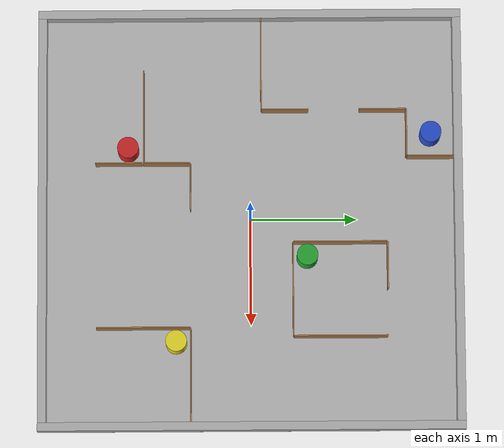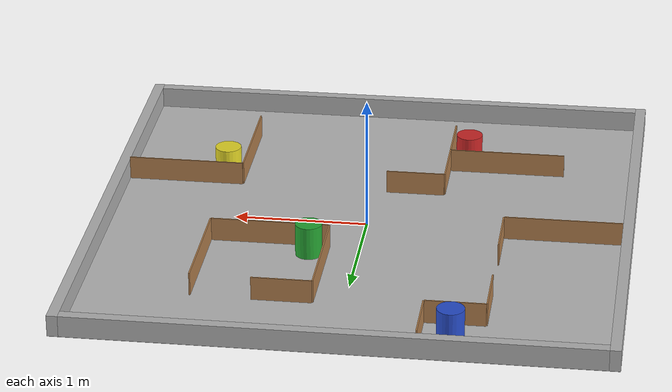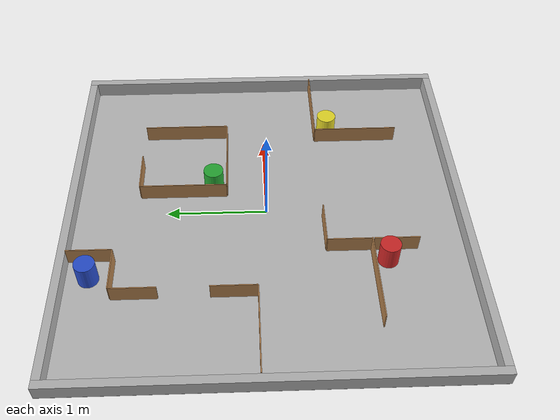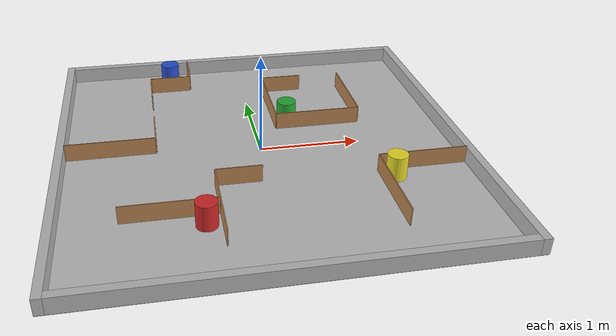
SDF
<?xml version="1.0"?>
<sdf version="1.6">
  <world name="default">

    <include>
      <uri>model://sun</uri>
    </include>

    <scene>
      <shadows>false</shadows>
    </scene>

    <gui fullscreen='0'>
      <camera name='user_camera'>
        <pose frame=''>3.4 0 4.8 0 1 3.142</pose>
        <view_controller>orbit</view_controller>
        <projection_type>perspective</projection_type>
      </camera>
    </gui>

    <physics type="ode">
      <real_time_update_rate>1000.0</real_time_update_rate>
      <max_step_size>0.001</max_step_size>
      <real_time_factor>1</real_time_factor>
      <ode>
        <solver>
          <type>quick</type>
          <iters>150</iters>
          <precon_iters>0</precon_iters>
          <sor>1.400000</sor>
          <use_dynamic_moi_rescaling>1</use_dynamic_moi_rescaling>
        </solver>
        <constraints>
          <cfm>0.00001</cfm>
          <erp>0.2</erp>
          <contact_max_correcting_vel>2000.000000</contact_max_correcting_vel>
          <contact_surface_layer>0.01000</contact_surface_layer>
        </constraints>
      </ode>
    </physics>

    <include>
      <uri>model://cr5_arena_walls</uri>
    </include>

    <include>
      <uri>model://task3_floor</uri>
    </include>

    <include>
      <uri>model://task3_room1</uri>
      <pose>1.475 -1.00609 0 0 0 0</pose>
    </include>

    <include>
      <uri>model://task3_room2</uri>
      <pose>0.67417 0.84209 0 0 0 0</pose>
    </include>

    <include>
      <uri>model://task3_room3</uri>
      <pose>-0.74686 -1.00964 0 0 0 0</pose>
    </include>

    <include>
      <uri>model://task3_room4</uri>
      <pose>-1.25 1.01 0 0 0 0</pose>
    </include>

    <include>
      <uri>model://beacon_blue</uri>
      <pose>-0.8 1.7 0 0 0 0</pose>
    </include>

    <include>
      <uri>model://beacon_red</uri>
      <pose>-0.66186 -1.14964 0 0 0 0</pose>
    </include>

    <include>
      <uri>model://beacon_green</uri>
      <pose>0.36417 0.53209 0 0 0 0</pose>
    </include>

    <include>
      <uri>model://beacon_yellow</uri>
      <pose>1.17 -0.70109 0 0 0 0</pose>
    </include>

  </world>
</sdf>

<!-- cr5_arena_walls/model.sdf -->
<sdf version='1.6'>
  <model name='cr5_arena_walls'>
    <static>true</static>
    <pose frame=''>0 0 0.08 0 0 0</pose>

    <link name='Right_Wall'>
      <pose frame=''>0 1.96 0 0 0 0</pose>
      <collision name='Right_Wall_Collision'>
        <geometry>
          <box>
            <size>3.84 0.08 0.16</size>
          </box>
        </geometry>
      </collision>
      <visual name='Right_Wall_Visual'>
        <geometry>
          <box>
            <size>3.84 0.08 0.16</size>
          </box>
        </geometry>
        <material>
          <!-- Light Grey -->
          <diffuse>0.7 0.7 0.7 1</diffuse>
          <pbr>
            <metal>
              <metalness>0.0</metalness>
              <roughness>0.9</roughness>
            </metal>
          </pbr>
        </material>
      </visual>
    </link>

    <link name='Back_Wall'>
      <pose frame=''>-1.96 0 0 0 0 0</pose>
      <collision name='Back_Wall_Collision'>
        <geometry>
          <box>
            <size>0.08 4.00 0.16</size>
          </box>
        </geometry>
      </collision>
      <visual name='Back_Wall_Visual'>
        <geometry>
          <box>
            <size>0.08 4.00 0.16</size>
          </box>
        </geometry>
        <material>
          <!-- Light Grey -->
          <diffuse>0.7 0.7 0.7 1</diffuse>
          <pbr>
            <metal>
              <metalness>0.0</metalness>
              <roughness>0.9</roughness>
            </metal>
          </pbr>
        </material>
      </visual>
    </link>

    <link name='Left_Wall'>
      <pose frame=''>0 -1.96 0 0 0 0</pose>
      <collision name='Left_Wall_Collision'>
        <geometry>
          <box>
            <size>3.84 0.08 0.16</size>
          </box>
        </geometry>
      </collision>
      <visual name='Left_Wall_Visual'>
        <geometry>
          <box>
            <size>3.84 0.08 0.16</size>
          </box>
        </geometry>
        <material>
          <!-- Light Grey -->
          <diffuse>0.7 0.7 0.7 1</diffuse>
          <pbr>
            <metal>
              <metalness>0.0</metalness>
              <roughness>0.9</roughness>
            </metal>
          </pbr>
        </material>
      </visual>
    </link>

    <link name='Front_Wall'>
      <pose frame=''>1.96 0 0 0 0 0</pose>
      <collision name='Front_Wall_Collision'>
        <geometry>
          <box>
            <size>0.08 4.00 0.16</size>
          </box>
        </geometry>
      </collision>
      <visual name='Front_Wall_Visual'>
        <geometry>
          <box>
            <size>0.08 4.00 0.16</size>
          </box>
        </geometry>
        <material>
          <!-- Light Grey -->
          <diffuse>0.7 0.7 0.7 1</diffuse>
          <pbr>
            <metal>
              <metalness>0.0</metalness>
              <roughness>0.9</roughness>
            </metal>
          </pbr>
        </material>
      </visual>
    </link>

  </model>
</sdf>

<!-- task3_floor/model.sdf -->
<sdf version="1.4">
<model name="task3_floor">
  <static>true</static>
    <link name="floor">
      <collision name="collision">
        <geometry>
          <plane>
            <normal>0 0 1</normal>
            <size>4.0 4.0</size>
          </plane>
        </geometry>
        <surface>
          <friction>
            <ode>
              <mu>100</mu>
              <mu2>50</mu2>
            </ode>
          </friction>
        </surface>
      </collision>
      <visual name="visual">
        <cast_shadows>false</cast_shadows>
        <geometry>
          <plane>
            <normal>0 0 1</normal>
            <size>4.0 4.0</size>
          </plane>
        </geometry>
        <material>
          <script>
            <uri>model://task3_floor/materials/scripts</uri>
            <uri>model://task3_floor/materials/textures</uri>
            <name>Task3Floor/Image</name>
          </script>
        </material>
      </visual>
    </link>

  </model>
</sdf>

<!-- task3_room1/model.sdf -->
<sdf version="1.4">
<model name="task3_room1">
  <static>false</static>
    <link name='room_1'>
      <pose frame=''>0 0 0.09 0 0 0</pose>
      <collision name='long_1coll'>
        <geometry>
          <box>
            <size>0.88 0.01 0.18</size>
          </box>
        </geometry>
        <pose frame=''>0.005 0.44 0 0 0 0</pose>
      </collision>
      <visual name='long_1vis'>
        <pose frame=''>0.005 0.44 0 0 0 0</pose>
        <geometry>
          <box>
            <size>0.88 0.01 0.18</size>
          </box>
        </geometry>
        <material>
          <script>
            <uri>file://media/materials/scripts/gazebo.material</uri>
            <name>Gazebo/Wood</name>
          </script>
        </material>
      </visual>
      <collision name='long_2coll'>
        <geometry>
          <box>
            <size>0.01 0.88 0.18</size>
          </box>
        </geometry>
        <pose frame=''>-0.44 -0.005 0 0 0 0</pose>
      </collision>
      <visual name='long_2vis'>
        <pose frame=''>-0.44 -0.005 0 0 0 0</pose>
        <geometry>
          <box>
            <size>0.01 0.88 0.18</size>
          </box>
        </geometry>
        <material>
          <script>
            <uri>file://media/materials/scripts/gazebo.material</uri>
            <name>Gazebo/Wood</name>
          </script>
        </material>
      </visual>
    </link>
  </model>
</sdf>

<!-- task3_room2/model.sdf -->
<sdf version="1.4">
<model name="task3_room2">
  <static>false</static>
  <link name='room_2'>
    <pose frame=''>0 0 0.09 0 0 0</pose>
    <collision name='long_1coll'>
      <geometry>
        <box>
          <size>0.01 0.88 0.18</size>
        </box>
      </geometry>
      <pose frame=''>-0.445 0 0 0 0 0</pose>
    </collision>
    <visual name='long_1vis'>
      <pose frame=''>-0.445 0 0 0 0 0</pose>
      <geometry>
        <box>
          <size>0.01 0.88 0.18</size>
        </box>
      </geometry>
      <material>
        <script>
          <uri>file://media/materials/scripts/gazebo.material</uri>
          <name>Gazebo/Wood</name>
        </script>
      </material>
    </visual>
    <collision name='short_1coll'>
      <geometry>
        <box>
          <size>0.44 0.01 0.18</size>
        </box>
      </geometry>
      <pose frame=''>-0.22 0.445 0 0 0 0</pose>
    </collision>
    <visual name='short_1vis'>
      <pose frame=''>-0.22 0.445 0 0 0 0</pose>
      <geometry>
        <box>
          <size>0.44 0.01 0.18</size>
        </box>
      </geometry>
      <material>
        <script>
          <uri>file://media/materials/scripts/gazebo.material</uri>
          <name>Gazebo/Wood</name>
        </script>
      </material>
    </visual>
    <collision name='long_2coll'>
      <geometry>
        <box>
          <size>0.88 0.01 0.18</size>
        </box>
      </geometry>
      <pose frame=''>0 -0.445 0 0 0 0</pose>
    </collision>
    <visual name='long_2vis'>
      <pose frame=''>0 -0.445 0 0 0 0</pose>
      <geometry>
        <box>
          <size>0.88 0.01 0.18</size>
        </box>
      </geometry>
      <material>
        <script>
          <uri>file://media/materials/scripts/gazebo.material</uri>
          <name>Gazebo/Wood</name>
        </script>
      </material>
    </visual>
    <collision name='long_3coll'>
      <geometry>
        <box>
          <size>0.01 0.88 0.18</size>
        </box>
      </geometry>
      <pose frame=''>0.445 0 0 0 0 0</pose>
    </collision>
    <visual name='long_3vis'>
      <pose frame=''>0.445 0 0 0 0 0</pose>
      <geometry>
        <box>
          <size>0.01 0.88 0.18</size>
        </box>
      </geometry>
      <material>
        <script>
          <uri>file://media/materials/scripts/gazebo.material</uri>
          <name>Gazebo/Wood</name>
        </script>
      </material>
    </visual>
  </link>
</model>
</sdf>

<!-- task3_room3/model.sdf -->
<sdf version="1.4">
<model name="task3_room3">
  <static>false</static>
  <link name='room_3'>
    <pose frame=''>0 0 0.09 0 0 0</pose>
    <collision name='long_1coll'>
      <geometry>
        <box>
          <size>0.88 0.01 0.18</size>
        </box>
      </geometry>
      <pose frame=''>-0.225 0.005 0 0 0 0</pose>
    </collision>
    <visual name='long_1vis'>
      <pose frame=''>-0.225 0.005 0 0 0 0</pose>
      <geometry>
        <box>
          <size>0.88 0.01 0.18</size>
        </box>
      </geometry>
      <material>
        <script>
          <uri>file://media/materials/scripts/gazebo.material</uri>
          <name>Gazebo/Wood</name>
        </script>
      </material>
    </visual>
    <collision name='short_1coll'>
      <geometry>
        <box>
          <size>0.01 0.44 0.18</size>
        </box>
      </geometry>
      <pose frame=''>0.22 -0.23 0 0 0 0</pose>
    </collision>
    <visual name='short_1vis'>
      <pose frame=''>0.22 -0.23 0 0 0 0</pose>
      <geometry>
        <box>
          <size>0.01 0.44 0.18</size>
        </box>
      </geometry>
      <material>
        <script>
          <uri>file://media/materials/scripts/gazebo.material</uri>
          <name>Gazebo/Wood</name>
        </script>
      </material>
    </visual>
    <collision name='short_2coll'>
      <geometry>
        <box>
          <size>0.01 0.44 0.18</size>
        </box>
      </geometry>
      <pose frame=''>0.22 0.22 0 0 0 0</pose>
    </collision>
    <visual name='short_2vis'>
      <pose frame=''>0.22 0.22 0 0 0 0</pose>
      <geometry>
        <box>
          <size>0.01 0.44 0.18</size>
        </box>
      </geometry>
      <material>
        <script>
          <uri>file://media/materials/scripts/gazebo.material</uri>
          <name>Gazebo/Wood</name>
        </script>
      </material>
    </visual>
    <collision name='short_3coll'>
      <geometry>
        <box>
          <size>0.44 0.01 0.18</size>
        </box>
      </geometry>
      <pose frame=''>0.445 0.445 0 0 0 0</pose>
    </collision>
    <visual name='short_3vis'>
      <pose frame=''>0.445 0.445 0 0 0 0</pose>
      <geometry>
        <box>
          <size>0.44 0.01 0.18</size>
        </box>
      </geometry>
      <material>
        <script>
          <uri>file://media/materials/scripts/gazebo.material</uri>
          <name>Gazebo/Wood</name>
        </script>
      </material>
    </visual>
  </link>
</model>
</sdf>

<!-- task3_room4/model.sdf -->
<sdf version="1.4">
<model name="task3_room4">
  <static>false</static>
  <link name='room_4'>
    <pose frame=''>0 0 0.09 0 0 0</pose>
    <collision name='long_1coll'>
      <geometry>
        <box>
          <size>0.88 0.01 0.18</size>
        </box>
      </geometry>
      <pose frame=''>-0.23 -0.905 0 0 0 0</pose>
    </collision>
    <visual name='long_1vis'>
      <pose frame=''>-0.23 -0.905 0 0 0 0</pose>
      <geometry>
        <box>
          <size>0.88 0.01 0.18</size>
        </box>
      </geometry>
      <material>
        <script>
          <uri>file://media/materials/scripts/gazebo.material</uri>
          <name>Gazebo/Wood</name>
        </script>
      </material>
    </visual>
    <collision name='short_1coll'>
      <geometry>
        <box>
          <size>0.01 0.44 0.18</size>
        </box>
      </geometry>
      <pose frame=''>0.215 -0.68 0 0 0 0</pose>
    </collision>
    <visual name='short_1vis'>
      <pose frame=''>0.215 -0.68 0 0 0 0</pose>
      <geometry>
        <box>
          <size>0.01 0.44 0.18</size>
        </box>
      </geometry>
      <material>
        <script>
          <uri>file://media/materials/scripts/gazebo.material</uri>
          <name>Gazebo/Wood</name>
        </script>
      </material>
    </visual>
    <collision name='short_2coll'>
      <geometry>
        <box>
          <size>0.01 0.44 0.18</size>
        </box>
      </geometry>
      <pose frame=''>0.215 0.24 0 0 0 0</pose>
    </collision>
    <visual name='short_2vis'>
      <pose frame=''>0.215 0.24 0 0 0 0</pose>
      <geometry>
        <box>
          <size>0.01 0.44 0.18</size>
        </box>
      </geometry>
      <material>
        <script>
          <uri>file://media/materials/scripts/gazebo.material</uri>
          <name>Gazebo/Wood</name>
        </script>
      </material>
    </visual>
    <collision name='short_3coll'>
      <geometry>
        <box>
          <size>0.44 0.01 0.18</size>
        </box>
      </geometry>
      <pose frame=''>0.44 0.465 0 0 0 0</pose>
    </collision>
    <visual name='short_3vis'>
      <pose frame=''>0.44 0.465 0 0 0 0</pose>
      <geometry>
        <box>
          <size>0.44 0.01 0.18</size>
        </box>
      </geometry>
      <material>
        <script>
          <uri>file://media/materials/scripts/gazebo.material</uri>
          <name>Gazebo/Wood</name>
        </script>
      </material>
    </visual>
    <collision name='short_4coll'>
      <geometry>
        <box>
          <size>0.01 0.44 0.18</size>
        </box>
      </geometry>
      <pose frame=''>0.665 0.69 0 0 0 0</pose>
    </collision>
    <visual name='short_4vis'>
      <pose frame=''>0.665 0.69 0 0 0 0</pose>
      <geometry>
        <box>
          <size>0.01 0.44 0.18</size>
        </box>
      </geometry>
      <material>
        <script>
          <uri>file://media/materials/scripts/gazebo.material</uri>
          <name>Gazebo/Wood</name>
        </script>
      </material>
    </visual>
  </link>
</model>
</sdf>

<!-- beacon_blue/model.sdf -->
<sdf version="1.4">
<model name="beacon_blue">
  <static>false</static>
  <link name='beacon_blue'>
    <pose frame=''>0 0 0.125 0 0 0</pose>
    <collision name='coll'>
      <geometry>
        <cylinder>
          <radius>0.1</radius>
          <length>0.25</length>
        </cylinder>
      </geometry>
      <max_contacts>10</max_contacts>
    </collision>
    <visual name='vis'>
      <geometry>
        <cylinder>
          <radius>0.1</radius>
          <length>0.25</length>
        </cylinder>
      </geometry>
      <material>
        <script>
          <uri>file://media/materials/scripts/gazebo.material</uri>
          <name>Gazebo/Blue</name>
        </script>
      </material>
    </visual>
  </link>
  </model>
</sdf>

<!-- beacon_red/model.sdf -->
<sdf version="1.4">
<model name="beacon_red">
  <static>false</static>
  <link name='beacon_red'>
    <pose frame=''>0 0 0.125 0 0 0</pose>
    <collision name='coll'>
      <geometry>
        <cylinder>
          <radius>0.1</radius>
          <length>0.25</length>
        </cylinder>
      </geometry>
      <max_contacts>10</max_contacts>
    </collision>
    <visual name='vis'>
      <geometry>
        <cylinder>
          <radius>0.1</radius>
          <length>0.25</length>
        </cylinder>
      </geometry>
      <material>
        <script>
          <uri>file://media/materials/scripts/gazebo.material</uri>
          <name>Gazebo/Red</name>
        </script>
      </material>
    </visual>
  </link>
  </model>
</sdf>

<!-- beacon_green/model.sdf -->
<sdf version="1.4">
<model name="beacon_green">
  <static>false</static>
  <link name='beacon_green'>
    <pose frame=''>0 0 0.125 0 0 0</pose>
    <collision name='coll'>
      <geometry>
        <cylinder>
          <radius>0.1</radius>
          <length>0.25</length>
        </cylinder>
      </geometry>
      <max_contacts>10</max_contacts>
    </collision>
    <visual name='vis'>
      <geometry>
        <cylinder>
          <radius>0.1</radius>
          <length>0.25</length>
        </cylinder>
      </geometry>
      <material>
        <script>
          <uri>file://media/materials/scripts/gazebo.material</uri>
          <name>Gazebo/Green</name>
        </script>
      </material>
    </visual>
  </link>
  </model>
</sdf>

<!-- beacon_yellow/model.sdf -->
<sdf version="1.4">
<model name="beacon_yellow">
  <static>false</static>
  <link name='beacon_yellow'>
    <pose frame=''>0 0 0.125 0 0 0</pose>
    <collision name='coll'>
      <geometry>
        <cylinder>
          <radius>0.1</radius>
          <length>0.25</length>
        </cylinder>
      </geometry>
      <max_contacts>10</max_contacts>
    </collision>
    <visual name='vis'>
      <geometry>
        <cylinder>
          <radius>0.1</radius>
          <length>0.25</length>
        </cylinder>
      </geometry>
      <material>
        <script>
          <uri>file://media/materials/scripts/gazebo.material</uri>
          <name>Gazebo/Yellow</name>
        </script>
      </material>
    </visual>
  </link>
  </model>
</sdf>
